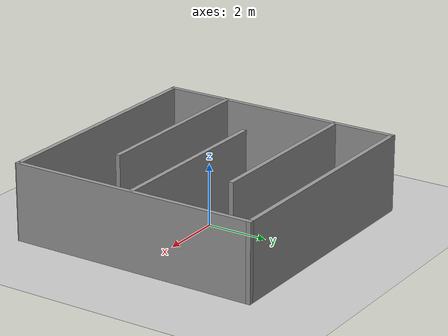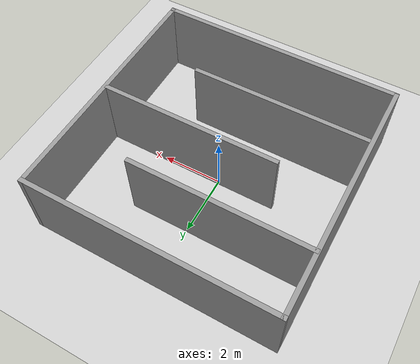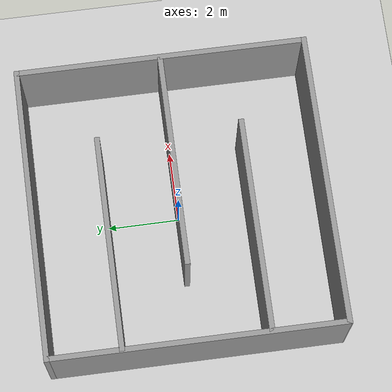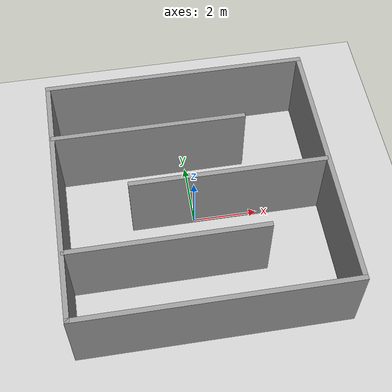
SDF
<sdf version="1.7">
 <world name="default">
  <light name="sun" type="directional">
   <pose>0 0 10 0 -0 0</pose>
   <diffuse>0.8 0.8 0.8 1</diffuse>
   <specular>0.2 0.2 0.2 1</specular>
   <attenuation>
    <range>1000</range>
    <constant>0.9</constant>
    <linear>0.01</linear>
    <quadratic>0.001</quadratic>
   </attenuation>
   <direction>-0.5 0.1 -0.9</direction>
   <spot><inner_angle>0</inner_angle><outer_angle>0</outer_angle><falloff>0</falloff></spot>
  </light>
  <model name="ground_plane">
   <static>1</static>
   <link name="link">
    <collision name="collision">
     <geometry><plane><normal>0 0 1</normal><size>100 100</size></plane></geometry>
     <surface>
      <contact><collide_bitmask>65535</collide_bitmask></contact>
      <friction><ode><mu>100</mu><mu2>50</mu2></ode></friction>
     </surface>
    </collision>
    <visual name="visual">
     <cast_shadows>0</cast_shadows>
     <geometry><plane><normal>0 0 1</normal><size>100 100</size></plane></geometry>
     <material>
      <script><uri>file://media/materials/scripts/gazebo.material</uri><name>Gazebo/Grey</name></script>
     </material>
    </visual>
   </link>
  </model>
  <gravity>0 0 -9.8</gravity>
  <magnetic_field>6e-06 2.3e-05 -4.2e-05</magnetic_field>
  <atmosphere type="adiabatic"/>
  <physics type="ode">
   <max_step_size>0.001</max_step_size>
   <real_time_factor>1</real_time_factor>
   <real_time_update_rate>1000</real_time_update_rate>
  </physics>
  <scene><ambient>0.4 0.4 0.4 1</ambient><background>0.7 0.7 0.7 1</background><shadows>1</shadows></scene>
  <spherical_coordinates>
   <surface_model>EARTH_WGS84</surface_model>
   <latitude_deg>0</latitude_deg>
   <longitude_deg>0</longitude_deg>
   <elevation>0</elevation>
   <heading_deg>0</heading_deg>
  </spherical_coordinates>
  <model name="lars_simple.world">
   <pose>0.013407 -0.023323 0 0 -0 0</pose>
   <link name="Wall_1">
    <collision name="Wall_1_Collision">
     <geometry><box><size>8.25 0.15 2.5</size></box></geometry>
     <pose>0 0 1.25 0 -0 0</pose>
    </collision>
    <visual name="Wall_1_Visual">
     <pose>0 0 1.25 0 -0 0</pose>
     <geometry><box><size>8.25 0.15 2.5</size></box></geometry>
     <material>
      <script><uri>file://media/materials/scripts/gazebo.material</uri><name>Gazebo/Grey</name></script>
      <ambient>1 1 1 1</ambient>
     </material>
     <meta><layer>0</layer></meta>
    </visual>
    <pose>0 -4.03574 0 0 -0 0</pose>
   </link>
   <link name="Wall_11">
    <collision name="Wall_11_Collision">
     <geometry><box><size>6 0.15 2.5</size></box></geometry>
     <pose>0 0 1.25 0 -0 0</pose>
    </collision>
    <visual name="Wall_11_Visual">
     <pose>0 0 1.25 0 -0 0</pose>
     <geometry><box><size>6 0.15 2.5</size></box></geometry>
     <material>
      <script><uri>file://media/materials/scripts/gazebo.material</uri><name>Gazebo/Grey</name></script>
      <ambient>1 1 1 1</ambient>
     </material>
     <meta><layer>0</layer></meta>
    </visual>
    <pose>1.03354 0.021807 0 0 -0 3.14159</pose>
   </link>
   <link name="Wall_13">
    <collision name="Wall_13_Collision">
     <geometry><box><size>6 0.15 2.5</size></box></geometry>
     <pose>0 0 1.25 0 -0 0</pose>
    </collision>
    <visual name="Wall_13_Visual">
     <pose>0 0 1.25 0 -0 0</pose>
     <geometry><box><size>6 0.15 2.5</size></box></geometry>
     <material>
      <script><uri>file://media/materials/scripts/gazebo.material</uri><name>Gazebo/Grey</name></script>
      <ambient>1 1 1 1</ambient>
     </material>
     <meta><layer>0</layer></meta>
    </visual>
    <pose>-1.08909 2.03417 0 0 -0 3.14159</pose>
   </link>
   <link name="Wall_4">
    <collision name="Wall_4_Collision">
     <geometry><box><size>8.19835 0.15 2.5</size></box></geometry>
     <pose>0 0 1.25 0 -0 0</pose>
    </collision>
    <visual name="Wall_4_Visual">
     <pose>0 0 1.25 0 -0 0</pose>
     <geometry><box><size>8.19835 0.15 2.5</size></box></geometry>
     <material>
      <script><uri>file://media/materials/scripts/gazebo.material</uri><name>Gazebo/Grey</name></script>
      <ambient>1 1 1 1</ambient>
     </material>
     <meta><layer>0</layer></meta>
    </visual>
    <pose>4.05 0.011565 0 0 -0 1.5708</pose>
   </link>
   <link name="Wall_5">
    <collision name="Wall_5_Collision">
     <geometry><box><size>8.25 0.15 2.5</size></box></geometry>
     <pose>0 0 1.25 0 -0 0</pose>
    </collision>
    <visual name="Wall_5_Visual">
     <pose>0 0 1.25 0 -0 0</pose>
     <geometry><box><size>8.25 0.15 2.5</size></box></geometry>
     <material>
      <script><uri>file://media/materials/scripts/gazebo.material</uri><name>Gazebo/Grey</name></script>
      <ambient>1 1 1 1</ambient>
     </material>
     <meta><layer>0</layer></meta>
    </visual>
    <pose>0 4.03574 0 0 -0 3.14159</pose>
   </link>
   <link name="Wall_6">
    <collision name="Wall_6_Collision">
     <geometry><box><size>8.19835 0.15 2.5</size></box></geometry>
     <pose>0 0 1.25 0 -0 0</pose>
    </collision>
    <visual name="Wall_6_Visual">
     <pose>0 0 1.25 0 -0 0</pose>
     <geometry><box><size>8.19835 0.15 2.5</size></box></geometry>
     <material>
      <script><uri>file://media/materials/scripts/gazebo.material</uri><name>Gazebo/Grey</name></script>
      <ambient>1 1 1 1</ambient>
     </material>
     <meta><layer>0</layer></meta>
    </visual>
    <pose>-4.05 0.011565 0 0 -0 -1.5708</pose>
   </link>
   <link name="Wall_9">
    <collision name="Wall_9_Collision">
     <geometry><box><size>6 0.15 2.5</size></box></geometry>
     <pose>0 0 1.25 0 -0 0</pose>
    </collision>
    <visual name="Wall_9_Visual">
     <pose>0 0 1.25 0 -0 0</pose>
     <geometry><box><size>6 0.15 2.5</size></box></geometry>
     <material>
      <script><uri>file://media/materials/scripts/gazebo.material</uri><name>Gazebo/Grey</name></script>
      <ambient>1 1 1 1</ambient>
     </material>
     <meta><layer>0</layer></meta>
    </visual>
    <pose>-1.06502 -1.96742 0 0 -0 3.14159</pose>
   </link>
   <static>1</static>
  </model>
 </world>
</sdf>
